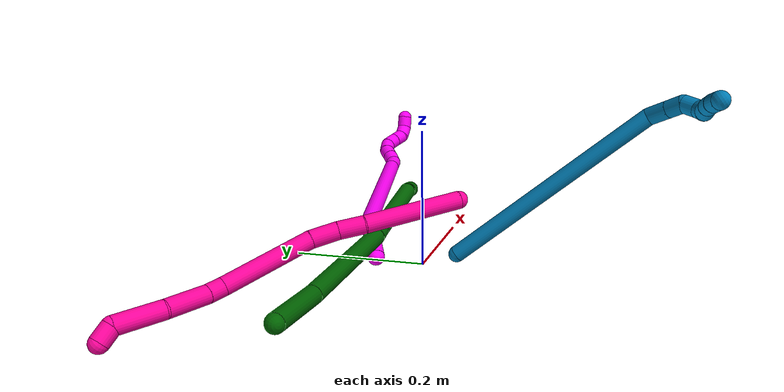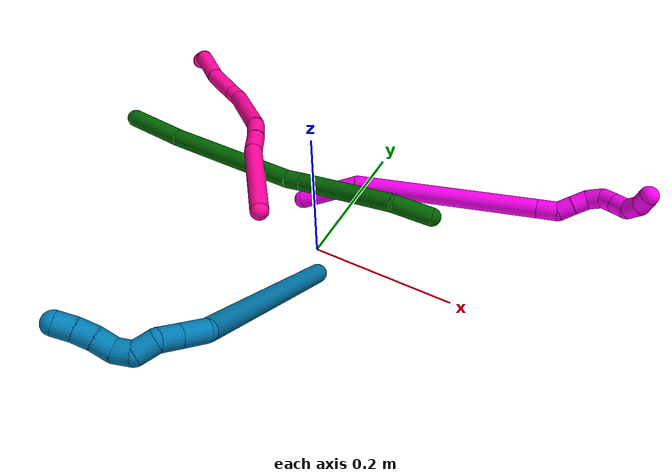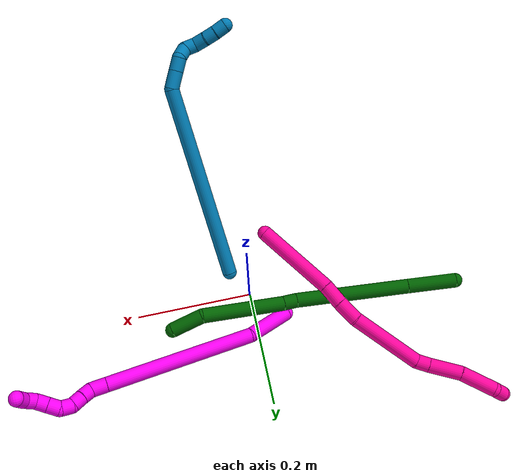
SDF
<sdf version="1.7">
 <world name="default">
  <model name="photoneo_s_sensor">
   <static>1</static>
   <pose>0 0 2 1.57079 1.57079 3.14159</pose>
   <link name="link">
    <inertial><mass>0.1</mass></inertial>
    <sensor name="sensor" type="depth">
     <update_rate>30</update_rate>
     <camera>
      <horizontal_fov>1.22</horizontal_fov>
      <image><width>1920</width><height>1200</height><format>B8G8R8</format></image>
      <clip><near>0.1</near><far>4</far></clip>
      <depth_camera><output>points</output></depth_camera>
     </camera>
     <plugin name="camera_plugin" filename="libgazebo_ros_depth_camera.so">
      <baseline>0.2</baseline>
      <alwaysOn>1</alwaysOn>
      <updateRate>0.0</updateRate>
      <cameraName>camera_ir</cameraName>
      <imageTopicName>/camera/color/image_raw</imageTopicName>
      <cameraInfoTopicName>/camera/color/camera_info</cameraInfoTopicName>
      <depthImageTopicName>/camera/depth/image_raw</depthImageTopicName>
      <depthImageCameraInfoTopicName>/camera/depth/camera_info</depthImageCameraInfoTopicName>
      <pointCloudTopicName>/camera/depth/points</pointCloudTopicName>
      <frameName>fr_optical</frameName>
      <pointCloudCutoff>0.1</pointCloudCutoff>
      <pointCloudCutoffMax>2.0</pointCloudCutoffMax>
      <distortionK1>0</distortionK1>
      <distortionK2>0</distortionK2>
      <distortionK3>0</distortionK3>
      <distortionT1>0</distortionT1>
      <distortionT2>0</distortionT2>
      <CxPrime>0</CxPrime>
      <Cx>0</Cx>
      <Cy>0</Cy>
      <focalLength>0</focalLength>
      <hackBaseline>0</hackBaseline>
     </plugin>
    </sensor>
   </link>
  </model>
  <model name="bin">
   <static>1</static>
   <link name="bottom">
    <collision name="collision-bottom">
     <pose>0 0 -0.01 0 -0 0</pose>
     <geometry><box><size>0.8 0.6 0.02</size></box></geometry>
     <surface>
      <friction><ode><mu>100</mu><mu2>100</mu2></ode></friction>
      <contact><collide_bitmask>65535</collide_bitmask></contact>
     </surface>
    </collision>
   </link>
   <link name="west_wall">
    <collision name="collision-west_wall">
     <pose>-0.41 0 0.1 0 -0 0</pose>
     <geometry><box><size>0.02 0.6 0.2</size></box></geometry>
     <surface>
      <friction><ode><mu>100</mu><mu2>100</mu2></ode></friction>
      <contact><collide_bitmask>65535</collide_bitmask></contact>
     </surface>
    </collision>
   </link>
   <link name="east_wall">
    <collision name="collision-east_wall">
     <pose>0.41 0 0.1 0 -0 0</pose>
     <geometry><box><size>0.02 0.6 0.2</size></box></geometry>
     <surface>
      <friction><ode><mu>100</mu><mu2>100</mu2></ode></friction>
      <contact><collide_bitmask>65535</collide_bitmask></contact>
     </surface>
    </collision>
   </link>
   <link name="south_wall">
    <collision name="collision-south_wall">
     <pose>0 -0.31 0.1 0 -0 0</pose>
     <geometry><box><size>0.8 0.02 0.2</size></box></geometry>
     <surface>
      <friction><ode><mu>100</mu><mu2>100</mu2></ode></friction>
      <contact><collide_bitmask>65535</collide_bitmask></contact>
     </surface>
    </collision>
   </link>
   <link name="north_wall">
    <collision name="collision-north_wall">
     <pose>0 0.31 0.1 0 -0 0</pose>
     <geometry><box><size>0.8 0.02 0.2</size></box></geometry>
     <surface>
      <friction><ode><mu>100</mu><mu2>100</mu2></ode></friction>
      <contact><collide_bitmask>65535</collide_bitmask></contact>
     </surface>
    </collision>
   </link>
  </model>
  <model name="6">
   <static>0</static>
   <link name="6">
    <collision name="collision-cylinder-e_1_1_4">
     <pose>-0.012209 -0.008151 -0.022887 2.79945 -0.465676 -1.88238</pose>
     <geometry><cylinder><radius>0.0125</radius><length>0.054382</length></cylinder></geometry>
     <surface>
      <friction><ode><mu>1.16</mu><mu2>1.16</mu2><slip1>0</slip1><slip2>0</slip2></ode></friction>
      <contact><ode><kp>1e+06</kp><kd>1</kd><max_vel>0</max_vel><min_depth>0.001</min_depth></ode></contact>
     </surface>
    </collision>
    <visual name="visual-cylinder-e_1_1_4">
     <pose>-0.012209 -0.008151 -0.022887 2.79945 -0.465676 -1.88238</pose>
     <geometry><cylinder><radius>0.0125</radius><length>0.054382</length></cylinder></geometry>
     <material><ambient>0 0.392157 0.003922 1</ambient></material>
    </visual>
    <collision name="collision-cylinder-e_2_4_5">
     <pose>-0.074981 -0.019077 -0.09482 3.08508 -0.799822 -3.00806</pose>
     <geometry><cylinder><radius>0.0125</radius><length>0.140992</length></cylinder></geometry>
     <surface>
      <friction><ode><mu>1.16</mu><mu2>1.16</mu2><slip1>0</slip1><slip2>0</slip2></ode></friction>
      <contact><ode><kp>1e+06</kp><kd>1</kd><max_vel>0</max_vel><min_depth>0.001</min_depth></ode></contact>
     </surface>
    </collision>
    <visual name="visual-cylinder-e_2_4_5">
     <pose>-0.074981 -0.019077 -0.09482 3.08508 -0.799822 -3.00806</pose>
     <geometry><cylinder><radius>0.0125</radius><length>0.140992</length></cylinder></geometry>
     <material><ambient>0 0.392157 0.003922 1</ambient></material>
    </visual>
    <collision name="collision-cylinder-e_3_5_6">
     <pose>-0.133247 -0.022379 -0.152462 3.08029 -0.729797 -2.98141</pose>
     <geometry><cylinder><radius>0.0125</radius><length>0.023111</length></cylinder></geometry>
     <surface>
      <friction><ode><mu>1.16</mu><mu2>1.16</mu2><slip1>0</slip1><slip2>0</slip2></ode></friction>
      <contact><ode><kp>1e+06</kp><kd>1</kd><max_vel>0</max_vel><min_depth>0.001</min_depth></ode></contact>
     </surface>
    </collision>
    <visual name="visual-cylinder-e_3_5_6">
     <pose>-0.133247 -0.022379 -0.152462 3.08029 -0.729797 -2.98141</pose>
     <geometry><cylinder><radius>0.0125</radius><length>0.023111</length></cylinder></geometry>
     <material><ambient>0 0.392157 0.003922 1</ambient></material>
    </visual>
    <collision name="collision-cylinder-e_4_6_7">
     <pose>-0.212369 -0.038189 -0.227083 2.91414 -0.811599 -2.62192</pose>
     <geometry><cylinder><radius>0.0125</radius><length>0.196908</length></cylinder></geometry>
     <surface>
      <friction><ode><mu>1.16</mu><mu2>1.16</mu2><slip1>0</slip1><slip2>0</slip2></ode></friction>
      <contact><ode><kp>1e+06</kp><kd>1</kd><max_vel>0</max_vel><min_depth>0.001</min_depth></ode></contact>
     </surface>
    </collision>
    <visual name="visual-cylinder-e_4_6_7">
     <pose>-0.212369 -0.038189 -0.227083 2.91414 -0.811599 -2.62192</pose>
     <geometry><cylinder><radius>0.0125</radius><length>0.196908</length></cylinder></geometry>
     <material><ambient>0 0.392157 0.003922 1</ambient></material>
    </visual>
    <collision name="collision-cylinder-e_5_7_2">
     <pose>-0.314202 -0.062733 -0.321012 2.82111 -0.802347 -2.41348</pose>
     <geometry><cylinder><radius>0.0125</radius><length>0.084607</length></cylinder></geometry>
     <surface>
      <friction><ode><mu>1.16</mu><mu2>1.16</mu2><slip1>0</slip1><slip2>0</slip2></ode></friction>
      <contact><ode><kp>1e+06</kp><kd>1</kd><max_vel>0</max_vel><min_depth>0.001</min_depth></ode></contact>
     </surface>
    </collision>
    <visual name="visual-cylinder-e_5_7_2">
     <pose>-0.314202 -0.062733 -0.321012 2.82111 -0.802347 -2.41348</pose>
     <geometry><cylinder><radius>0.0125</radius><length>0.084607</length></cylinder></geometry>
     <material><ambient>0 0.392157 0.003922 1</ambient></material>
    </visual>
    <collision name="collision-sphere-2">
     <pose>-0.344618 -0.071996 -0.348917 0 -0 0</pose>
     <geometry><sphere><radius>0.0125</radius></sphere></geometry>
     <surface>
      <friction><ode><mu>1.16</mu><mu2>1.16</mu2><slip1>0</slip1><slip2>0</slip2></ode></friction>
      <contact><ode><kp>1e+06</kp><kd>1</kd><max_vel>0</max_vel><min_depth>0.001</min_depth></ode></contact>
     </surface>
    </collision>
    <visual name="visual-sphere-2">
     <pose>-0.344618 -0.071996 -0.348917 0 -0 0</pose>
     <geometry><sphere><radius>0.0125</radius></sphere></geometry>
     <material><ambient>0 0.392157 0.003922 1</ambient></material>
    </visual>
    <collision name="collision-sphere-7">
     <pose>-0.283786 -0.053471 -0.293107 0 -0 0</pose>
     <geometry><sphere><radius>0.0125</radius></sphere></geometry>
     <surface>
      <friction><ode><mu>1.16</mu><mu2>1.16</mu2><slip1>0</slip1><slip2>0</slip2></ode></friction>
      <contact><ode><kp>1e+06</kp><kd>1</kd><max_vel>0</max_vel><min_depth>0.001</min_depth></ode></contact>
     </surface>
    </collision>
    <visual name="visual-sphere-7">
     <pose>-0.283786 -0.053471 -0.293107 0 -0 0</pose>
     <geometry><sphere><radius>0.0125</radius></sphere></geometry>
     <material><ambient>0 0.392157 0.003922 1</ambient></material>
    </visual>
    <collision name="collision-sphere-6">
     <pose>-0.140952 -0.022907 -0.161059 0 -0 0</pose>
     <geometry><sphere><radius>0.0125</radius></sphere></geometry>
     <surface>
      <friction><ode><mu>1.16</mu><mu2>1.16</mu2><slip1>0</slip1><slip2>0</slip2></ode></friction>
      <contact><ode><kp>1e+06</kp><kd>1</kd><max_vel>0</max_vel><min_depth>0.001</min_depth></ode></contact>
     </surface>
    </collision>
    <visual name="visual-sphere-6">
     <pose>-0.140952 -0.022907 -0.161059 0 -0 0</pose>
     <geometry><sphere><radius>0.0125</radius></sphere></geometry>
     <material><ambient>0 0.392157 0.003922 1</ambient></material>
    </visual>
    <collision name="collision-sphere-5">
     <pose>-0.125543 -0.021851 -0.143866 0 -0 0</pose>
     <geometry><sphere><radius>0.0125</radius></sphere></geometry>
     <surface>
      <friction><ode><mu>1.16</mu><mu2>1.16</mu2><slip1>0</slip1><slip2>0</slip2></ode></friction>
      <contact><ode><kp>1e+06</kp><kd>1</kd><max_vel>0</max_vel><min_depth>0.001</min_depth></ode></contact>
     </surface>
    </collision>
    <visual name="visual-sphere-5">
     <pose>-0.125543 -0.021851 -0.143866 0 -0 0</pose>
     <geometry><sphere><radius>0.0125</radius></sphere></geometry>
     <material><ambient>0 0.392157 0.003922 1</ambient></material>
    </visual>
    <collision name="collision-sphere-1">
     <geometry><sphere><radius>0.0125</radius></sphere></geometry>
     <surface>
      <friction><ode><mu>1.16</mu><mu2>1.16</mu2><slip1>0</slip1><slip2>0</slip2></ode></friction>
      <contact><ode><kp>1e+06</kp><kd>1</kd><max_vel>0</max_vel><min_depth>0.001</min_depth></ode></contact>
     </surface>
    </collision>
    <visual name="visual-sphere-1">
     <geometry><sphere><radius>0.0125</radius></sphere></geometry>
     <material><ambient>0 0.392157 0.003922 1</ambient></material>
    </visual>
    <collision name="collision-sphere-4">
     <pose>-0.024419 -0.016302 -0.045775 0 -0 0</pose>
     <geometry><sphere><radius>0.0125</radius></sphere></geometry>
     <surface>
      <friction><ode><mu>1.16</mu><mu2>1.16</mu2><slip1>0</slip1><slip2>0</slip2></ode></friction>
      <contact><ode><kp>1e+06</kp><kd>1</kd><max_vel>0</max_vel><min_depth>0.001</min_depth></ode></contact>
     </surface>
    </collision>
    <visual name="visual-sphere-4">
     <pose>-0.024419 -0.016302 -0.045775 0 -0 0</pose>
     <geometry><sphere><radius>0.0125</radius></sphere></geometry>
     <material><ambient>0 0.392157 0.003922 1</ambient></material>
    </visual>
    <inertial>
     <pose>-0.165432 -0.032955 -0.180023 0 -0 0</pose>
     <mass>0.5</mass>
     <inertia>
      <ixx>-0.000891</ixx>
      <ixy>0</ixy>
      <ixz>0</ixz>
      <iyy>0.000603</iyy>
      <iyz>0</iyz>
      <izz>0.000784</izz>
     </inertia>
    </inertial>
   </link>
   <pose>0.141663 0.060041 0.07854 -1.67125 -0.388554 -0.770493</pose>
  </model>
  <model name="9">
   <static>0</static>
   <link name="9">
    <collision name="collision-cylinder-e_1_1_4">
     <pose>0.006307 0.010333 0.170066 -0.060685 0.037 -0.001123</pose>
     <geometry><cylinder><radius>0.0125</radius><length>0.340992</length></cylinder></geometry>
     <surface>
      <friction><ode><mu>1.16</mu><mu2>1.16</mu2><slip1>0</slip1><slip2>0</slip2></ode></friction>
      <contact><ode><kp>1e+06</kp><kd>1</kd><max_vel>0</max_vel><min_depth>0.001</min_depth></ode></contact>
     </surface>
    </collision>
    <visual name="visual-cylinder-e_1_1_4">
     <pose>0.006307 0.010333 0.170066 -0.060685 0.037 -0.001123</pose>
     <geometry><cylinder><radius>0.0125</radius><length>0.340992</length></cylinder></geometry>
     <material><ambient>0 0.490196 0.709804 1</ambient></material>
    </visual>
    <collision name="collision-cylinder-e_2_4_5">
     <pose>0.007169 0.015443 0.353506 0.372306 -0.362435 -0.068989</pose>
     <geometry><cylinder><radius>0.0125</radius><length>0.030711</length></cylinder></geometry>
     <surface>
      <friction><ode><mu>1.16</mu><mu2>1.16</mu2><slip1>0</slip1><slip2>0</slip2></ode></friction>
      <contact><ode><kp>1e+06</kp><kd>1</kd><max_vel>0</max_vel><min_depth>0.001</min_depth></ode></contact>
     </surface>
    </collision>
    <visual name="visual-cylinder-e_2_4_5">
     <pose>0.007169 0.015443 0.353506 0.372306 -0.362435 -0.068989</pose>
     <geometry><cylinder><radius>0.0125</radius><length>0.030711</length></cylinder></geometry>
     <material><ambient>0 0.490196 0.709804 1</ambient></material>
    </visual>
    <collision name="collision-cylinder-e_3_5_6">
     <pose>-0.002467 0.006278 0.376991 0.371774 -0.368578 -0.070081</pose>
     <geometry><cylinder><radius>0.0125</radius><length>0.023268</length></cylinder></geometry>
     <surface>
      <friction><ode><mu>1.16</mu><mu2>1.16</mu2><slip1>0</slip1><slip2>0</slip2></ode></friction>
      <contact><ode><kp>1e+06</kp><kd>1</kd><max_vel>0</max_vel><min_depth>0.001</min_depth></ode></contact>
     </surface>
    </collision>
    <visual name="visual-cylinder-e_3_5_6">
     <pose>-0.002467 0.006278 0.376991 0.371774 -0.368578 -0.070081</pose>
     <geometry><cylinder><radius>0.0125</radius><length>0.023268</length></cylinder></geometry>
     <material><ambient>0 0.490196 0.709804 1</ambient></material>
    </visual>
    <collision name="collision-cylinder-e_4_6_7">
     <pose>-0.008895 -0.007404 0.393041 1.02326 -0.193647 -0.108966</pose>
     <geometry><cylinder><radius>0.0125</radius><length>0.023248</length></cylinder></geometry>
     <surface>
      <friction><ode><mu>1.16</mu><mu2>1.16</mu2><slip1>0</slip1><slip2>0</slip2></ode></friction>
      <contact><ode><kp>1e+06</kp><kd>1</kd><max_vel>0</max_vel><min_depth>0.001</min_depth></ode></contact>
     </surface>
    </collision>
    <visual name="visual-cylinder-e_4_6_7">
     <pose>-0.008895 -0.007404 0.393041 1.02326 -0.193647 -0.108966</pose>
     <geometry><cylinder><radius>0.0125</radius><length>0.023248</length></cylinder></geometry>
     <material><ambient>0 0.490196 0.709804 1</ambient></material>
    </visual>
    <collision name="collision-cylinder-e_5_7_8">
     <pose>-0.019146 -0.0231 0.400405 1.33588 -0.918186 -0.743661</pose>
     <geometry><cylinder><radius>0.0125</radius><length>0.020172</length></cylinder></geometry>
     <surface>
      <friction><ode><mu>1.16</mu><mu2>1.16</mu2><slip1>0</slip1><slip2>0</slip2></ode></friction>
      <contact><ode><kp>1e+06</kp><kd>1</kd><max_vel>0</max_vel><min_depth>0.001</min_depth></ode></contact>
     </surface>
    </collision>
    <visual name="visual-cylinder-e_5_7_8">
     <pose>-0.019146 -0.0231 0.400405 1.33588 -0.918186 -0.743661</pose>
     <geometry><cylinder><radius>0.0125</radius><length>0.020172</length></cylinder></geometry>
     <material><ambient>0 0.490196 0.709804 1</ambient></material>
    </visual>
    <collision name="collision-cylinder-e_6_8_9">
     <pose>-0.037116 -0.030438 0.404879 0.425507 -1.24655 -0.308122</pose>
     <geometry><cylinder><radius>0.0125</radius><length>0.021009</length></cylinder></geometry>
     <surface>
      <friction><ode><mu>1.16</mu><mu2>1.16</mu2><slip1>0</slip1><slip2>0</slip2></ode></friction>
      <contact><ode><kp>1e+06</kp><kd>1</kd><max_vel>0</max_vel><min_depth>0.001</min_depth></ode></contact>
     </surface>
    </collision>
    <visual name="visual-cylinder-e_6_8_9">
     <pose>-0.037116 -0.030438 0.404879 0.425507 -1.24655 -0.308122</pose>
     <geometry><cylinder><radius>0.0125</radius><length>0.021009</length></cylinder></geometry>
     <material><ambient>0 0.490196 0.709804 1</ambient></material>
    </visual>
    <collision name="collision-cylinder-e_7_9_10">
     <pose>-0.056167 -0.034509 0.411126 0.699213 -1.13993 -0.459099</pose>
     <geometry><cylinder><radius>0.0125</radius><length>0.020015</length></cylinder></geometry>
     <surface>
      <friction><ode><mu>1.16</mu><mu2>1.16</mu2><slip1>0</slip1><slip2>0</slip2></ode></friction>
      <contact><ode><kp>1e+06</kp><kd>1</kd><max_vel>0</max_vel><min_depth>0.001</min_depth></ode></contact>
     </surface>
    </collision>
    <visual name="visual-cylinder-e_7_9_10">
     <pose>-0.056167 -0.034509 0.411126 0.699213 -1.13993 -0.459099</pose>
     <geometry><cylinder><radius>0.0125</radius><length>0.020015</length></cylinder></geometry>
     <material><ambient>0 0.490196 0.709804 1</ambient></material>
    </visual>
    <collision name="collision-cylinder-e_8_10_2">
     <pose>-0.074049 -0.040845 0.418248 0.748795 -1.0236 -0.434471</pose>
     <geometry><cylinder><radius>0.0125</radius><length>0.020584</length></cylinder></geometry>
     <surface>
      <friction><ode><mu>1.16</mu><mu2>1.16</mu2><slip1>0</slip1><slip2>0</slip2></ode></friction>
      <contact><ode><kp>1e+06</kp><kd>1</kd><max_vel>0</max_vel><min_depth>0.001</min_depth></ode></contact>
     </surface>
    </collision>
    <visual name="visual-cylinder-e_8_10_2">
     <pose>-0.074049 -0.040845 0.418248 0.748795 -1.0236 -0.434471</pose>
     <geometry><cylinder><radius>0.0125</radius><length>0.020584</length></cylinder></geometry>
     <material><ambient>0 0.490196 0.709804 1</ambient></material>
    </visual>
    <collision name="collision-sphere-2">
     <pose>-0.082838 -0.04449 0.42217 0 -0 0</pose>
     <geometry><sphere><radius>0.0125</radius></sphere></geometry>
     <surface>
      <friction><ode><mu>1.16</mu><mu2>1.16</mu2><slip1>0</slip1><slip2>0</slip2></ode></friction>
      <contact><ode><kp>1e+06</kp><kd>1</kd><max_vel>0</max_vel><min_depth>0.001</min_depth></ode></contact>
     </surface>
    </collision>
    <visual name="visual-sphere-2">
     <pose>-0.082838 -0.04449 0.42217 0 -0 0</pose>
     <geometry><sphere><radius>0.0125</radius></sphere></geometry>
     <material><ambient>0 0.490196 0.709804 1</ambient></material>
    </visual>
    <collision name="collision-sphere-10">
     <pose>-0.065259 -0.037199 0.414325 0 -0 0</pose>
     <geometry><sphere><radius>0.0125</radius></sphere></geometry>
     <surface>
      <friction><ode><mu>1.16</mu><mu2>1.16</mu2><slip1>0</slip1><slip2>0</slip2></ode></friction>
      <contact><ode><kp>1e+06</kp><kd>1</kd><max_vel>0</max_vel><min_depth>0.001</min_depth></ode></contact>
     </surface>
    </collision>
    <visual name="visual-sphere-10">
     <pose>-0.065259 -0.037199 0.414325 0 -0 0</pose>
     <geometry><sphere><radius>0.0125</radius></sphere></geometry>
     <material><ambient>0 0.490196 0.709804 1</ambient></material>
    </visual>
    <collision name="collision-sphere-9">
     <pose>-0.047074 -0.031819 0.407927 0 -0 0</pose>
     <geometry><sphere><radius>0.0125</radius></sphere></geometry>
     <surface>
      <friction><ode><mu>1.16</mu><mu2>1.16</mu2><slip1>0</slip1><slip2>0</slip2></ode></friction>
      <contact><ode><kp>1e+06</kp><kd>1</kd><max_vel>0</max_vel><min_depth>0.001</min_depth></ode></contact>
     </surface>
    </collision>
    <visual name="visual-sphere-9">
     <pose>-0.047074 -0.031819 0.407927 0 -0 0</pose>
     <geometry><sphere><radius>0.0125</radius></sphere></geometry>
     <material><ambient>0 0.490196 0.709804 1</ambient></material>
    </visual>
    <collision name="collision-sphere-4">
     <pose>0.012614 0.020666 0.340132 0 -0 0</pose>
     <geometry><sphere><radius>0.0125</radius></sphere></geometry>
     <surface>
      <friction><ode><mu>1.16</mu><mu2>1.16</mu2><slip1>0</slip1><slip2>0</slip2></ode></friction>
      <contact><ode><kp>1e+06</kp><kd>1</kd><max_vel>0</max_vel><min_depth>0.001</min_depth></ode></contact>
     </surface>
    </collision>
    <visual name="visual-sphere-4">
     <pose>0.012614 0.020666 0.340132 0 -0 0</pose>
     <geometry><sphere><radius>0.0125</radius></sphere></geometry>
     <material><ambient>0 0.490196 0.709804 1</ambient></material>
    </visual>
    <collision name="collision-sphere-1">
     <geometry><sphere><radius>0.0125</radius></sphere></geometry>
     <surface>
      <friction><ode><mu>1.16</mu><mu2>1.16</mu2><slip1>0</slip1><slip2>0</slip2></ode></friction>
      <contact><ode><kp>1e+06</kp><kd>1</kd><max_vel>0</max_vel><min_depth>0.001</min_depth></ode></contact>
     </surface>
    </collision>
    <visual name="visual-sphere-1">
     <geometry><sphere><radius>0.0125</radius></sphere></geometry>
     <material><ambient>0 0.490196 0.709804 1</ambient></material>
    </visual>
    <collision name="collision-sphere-8">
     <pose>-0.027159 -0.029056 0.401831 0 -0 0</pose>
     <geometry><sphere><radius>0.0125</radius></sphere></geometry>
     <surface>
      <friction><ode><mu>1.16</mu><mu2>1.16</mu2><slip1>0</slip1><slip2>0</slip2></ode></friction>
      <contact><ode><kp>1e+06</kp><kd>1</kd><max_vel>0</max_vel><min_depth>0.001</min_depth></ode></contact>
     </surface>
    </collision>
    <visual name="visual-sphere-8">
     <pose>-0.027159 -0.029056 0.401831 0 -0 0</pose>
     <geometry><sphere><radius>0.0125</radius></sphere></geometry>
     <material><ambient>0 0.490196 0.709804 1</ambient></material>
    </visual>
    <collision name="collision-sphere-5">
     <pose>0.001725 0.01022 0.36688 0 -0 0</pose>
     <geometry><sphere><radius>0.0125</radius></sphere></geometry>
     <surface>
      <friction><ode><mu>1.16</mu><mu2>1.16</mu2><slip1>0</slip1><slip2>0</slip2></ode></friction>
      <contact><ode><kp>1e+06</kp><kd>1</kd><max_vel>0</max_vel><min_depth>0.001</min_depth></ode></contact>
     </surface>
    </collision>
    <visual name="visual-sphere-5">
     <pose>0.001725 0.01022 0.36688 0 -0 0</pose>
     <geometry><sphere><radius>0.0125</radius></sphere></geometry>
     <material><ambient>0 0.490196 0.709804 1</ambient></material>
    </visual>
    <collision name="collision-sphere-6">
     <pose>-0.006658 0.002335 0.387103 0 -0 0</pose>
     <geometry><sphere><radius>0.0125</radius></sphere></geometry>
     <surface>
      <friction><ode><mu>1.16</mu><mu2>1.16</mu2><slip1>0</slip1><slip2>0</slip2></ode></friction>
      <contact><ode><kp>1e+06</kp><kd>1</kd><max_vel>0</max_vel><min_depth>0.001</min_depth></ode></contact>
     </surface>
    </collision>
    <visual name="visual-sphere-6">
     <pose>-0.006658 0.002335 0.387103 0 -0 0</pose>
     <geometry><sphere><radius>0.0125</radius></sphere></geometry>
     <material><ambient>0 0.490196 0.709804 1</ambient></material>
    </visual>
    <collision name="collision-sphere-7">
     <pose>-0.011132 -0.017143 0.398979 0 -0 0</pose>
     <geometry><sphere><radius>0.0125</radius></sphere></geometry>
     <surface>
      <friction><ode><mu>1.16</mu><mu2>1.16</mu2><slip1>0</slip1><slip2>0</slip2></ode></friction>
      <contact><ode><kp>1e+06</kp><kd>1</kd><max_vel>0</max_vel><min_depth>0.001</min_depth></ode></contact>
     </surface>
    </collision>
    <visual name="visual-sphere-7">
     <pose>-0.011132 -0.017143 0.398979 0 -0 0</pose>
     <geometry><sphere><radius>0.0125</radius></sphere></geometry>
     <material><ambient>0 0.490196 0.709804 1</ambient></material>
    </visual>
    <inertial>
     <pose>-0.003416 0.00267 0.240356 0 -0 0</pose>
     <mass>0.5</mass>
     <inertia>
      <ixx>0.003313</ixx>
      <ixy>0</ixy>
      <ixz>0</ixz>
      <iyy>0.003314</iyy>
      <iyz>0</iyz>
      <izz>-0.000278</izz>
     </inertia>
    </inertial>
   </link>
   <pose>0.027089 -0.04584 0.011497 0.873095 0.3855 -0.241676</pose>
  </model>
  <model name="10">
   <static>0</static>
   <link name="10">
    <collision name="collision-cylinder-e_1_1_4">
     <pose>0.016104 0.005822 0.037393 -0.154451 0.402327 -0.031556</pose>
     <geometry><cylinder><radius>0.0125</radius><length>0.082255</length></cylinder></geometry>
     <surface>
      <friction><ode><mu>1.16</mu><mu2>1.16</mu2><slip1>0</slip1><slip2>0</slip2></ode></friction>
      <contact><ode><kp>1e+06</kp><kd>1</kd><max_vel>0</max_vel><min_depth>0.001</min_depth></ode></contact>
     </surface>
    </collision>
    <visual name="visual-cylinder-e_1_1_4">
     <pose>0.016104 0.005822 0.037393 -0.154451 0.402327 -0.031556</pose>
     <geometry><cylinder><radius>0.0125</radius><length>0.082255</length></cylinder></geometry>
     <material><ambient>1 0 0.964706 1</ambient></material>
    </visual>
    <collision name="collision-cylinder-e_2_4_5">
     <pose>0.040211 0.00866 0.199946 0.023835 0.06384 0.000761</pose>
     <geometry><cylinder><radius>0.0125</radius><length>0.250901</length></cylinder></geometry>
     <surface>
      <friction><ode><mu>1.16</mu><mu2>1.16</mu2><slip1>0</slip1><slip2>0</slip2></ode></friction>
      <contact><ode><kp>1e+06</kp><kd>1</kd><max_vel>0</max_vel><min_depth>0.001</min_depth></ode></contact>
     </surface>
    </collision>
    <visual name="visual-cylinder-e_2_4_5">
     <pose>0.040211 0.00866 0.199946 0.023835 0.06384 0.000761</pose>
     <geometry><cylinder><radius>0.0125</radius><length>0.250901</length></cylinder></geometry>
     <material><ambient>1 0 0.964706 1</ambient></material>
    </visual>
    <collision name="collision-cylinder-e_3_5_6">
     <pose>0.049016 0.005239 0.338457 0.032694 0.059971 0.000981</pose>
     <geometry><cylinder><radius>0.0125</radius><length>0.026767</length></cylinder></geometry>
     <surface>
      <friction><ode><mu>1.16</mu><mu2>1.16</mu2><slip1>0</slip1><slip2>0</slip2></ode></friction>
      <contact><ode><kp>1e+06</kp><kd>1</kd><max_vel>0</max_vel><min_depth>0.001</min_depth></ode></contact>
     </surface>
    </collision>
    <visual name="visual-cylinder-e_3_5_6">
     <pose>0.049016 0.005239 0.338457 0.032694 0.059971 0.000981</pose>
     <geometry><cylinder><radius>0.0125</radius><length>0.026767</length></cylinder></geometry>
     <material><ambient>1 0 0.964706 1</ambient></material>
    </visual>
    <collision name="collision-cylinder-e_4_6_7">
     <pose>0.055182 0.006451 0.360095 -0.196431 0.565645 -0.057254</pose>
     <geometry><cylinder><radius>0.0125</radius><length>0.020013</length></cylinder></geometry>
     <surface>
      <friction><ode><mu>1.16</mu><mu2>1.16</mu2><slip1>0</slip1><slip2>0</slip2></ode></friction>
      <contact><ode><kp>1e+06</kp><kd>1</kd><max_vel>0</max_vel><min_depth>0.001</min_depth></ode></contact>
     </surface>
    </collision>
    <visual name="visual-cylinder-e_4_6_7">
     <pose>0.055182 0.006451 0.360095 -0.196431 0.565645 -0.057254</pose>
     <geometry><cylinder><radius>0.0125</radius><length>0.020013</length></cylinder></geometry>
     <material><ambient>1 0 0.964706 1</ambient></material>
    </visual>
    <collision name="collision-cylinder-e_5_7_8">
     <pose>0.066103 0.00908 0.376661 -0.117758 0.587995 -0.035691</pose>
     <geometry><cylinder><radius>0.0125</radius><length>0.020042</length></cylinder></geometry>
     <surface>
      <friction><ode><mu>1.16</mu><mu2>1.16</mu2><slip1>0</slip1><slip2>0</slip2></ode></friction>
      <contact><ode><kp>1e+06</kp><kd>1</kd><max_vel>0</max_vel><min_depth>0.001</min_depth></ode></contact>
     </surface>
    </collision>
    <visual name="visual-cylinder-e_5_7_8">
     <pose>0.066103 0.00908 0.376661 -0.117758 0.587995 -0.035691</pose>
     <geometry><cylinder><radius>0.0125</radius><length>0.020042</length></cylinder></geometry>
     <material><ambient>1 0 0.964706 1</ambient></material>
    </visual>
    <collision name="collision-cylinder-e_6_8_9">
     <pose>0.073157 0.012728 0.394468 -0.273141 0.149933 -0.020643</pose>
     <geometry><cylinder><radius>0.0125</radius><length>0.020011</length></cylinder></geometry>
     <surface>
      <friction><ode><mu>1.16</mu><mu2>1.16</mu2><slip1>0</slip1><slip2>0</slip2></ode></friction>
      <contact><ode><kp>1e+06</kp><kd>1</kd><max_vel>0</max_vel><min_depth>0.001</min_depth></ode></contact>
     </surface>
    </collision>
    <visual name="visual-cylinder-e_6_8_9">
     <pose>0.073157 0.012728 0.394468 -0.273141 0.149933 -0.020643</pose>
     <geometry><cylinder><radius>0.0125</radius><length>0.020011</length></cylinder></geometry>
     <material><ambient>1 0 0.964706 1</ambient></material>
    </visual>
    <collision name="collision-cylinder-e_7_9_10">
     <pose>0.070347 0.018691 0.412402 -0.373371 -0.444852 0.085388</pose>
     <geometry><cylinder><radius>0.0125</radius><length>0.020006</length></cylinder></geometry>
     <surface>
      <friction><ode><mu>1.16</mu><mu2>1.16</mu2><slip1>0</slip1><slip2>0</slip2></ode></friction>
      <contact><ode><kp>1e+06</kp><kd>1</kd><max_vel>0</max_vel><min_depth>0.001</min_depth></ode></contact>
     </surface>
    </collision>
    <visual name="visual-cylinder-e_7_9_10">
     <pose>0.070347 0.018691 0.412402 -0.373371 -0.444852 0.085388</pose>
     <geometry><cylinder><radius>0.0125</radius><length>0.020006</length></cylinder></geometry>
     <material><ambient>1 0 0.964706 1</ambient></material>
    </visual>
    <collision name="collision-cylinder-e_8_10_11">
     <pose>0.061569 0.025029 0.429218 -0.347425 -0.463809 0.082833</pose>
     <geometry><cylinder><radius>0.0125</radius><length>0.02</length></cylinder></geometry>
     <surface>
      <friction><ode><mu>1.16</mu><mu2>1.16</mu2><slip1>0</slip1><slip2>0</slip2></ode></friction>
      <contact><ode><kp>1e+06</kp><kd>1</kd><max_vel>0</max_vel><min_depth>0.001</min_depth></ode></contact>
     </surface>
    </collision>
    <visual name="visual-cylinder-e_8_10_11">
     <pose>0.061569 0.025029 0.429218 -0.347425 -0.463809 0.082833</pose>
     <geometry><cylinder><radius>0.0125</radius><length>0.02</length></cylinder></geometry>
     <material><ambient>1 0 0.964706 1</ambient></material>
    </visual>
    <collision name="collision-cylinder-e_9_11_12">
     <pose>0.05761 0.034173 0.445536 -0.656946 0.051489 -0.017552</pose>
     <geometry><cylinder><radius>0.0125</radius><length>0.020001</length></cylinder></geometry>
     <surface>
      <friction><ode><mu>1.16</mu><mu2>1.16</mu2><slip1>0</slip1><slip2>0</slip2></ode></friction>
      <contact><ode><kp>1e+06</kp><kd>1</kd><max_vel>0</max_vel><min_depth>0.001</min_depth></ode></contact>
     </surface>
    </collision>
    <visual name="visual-cylinder-e_9_11_12">
     <pose>0.05761 0.034173 0.445536 -0.656946 0.051489 -0.017552</pose>
     <geometry><cylinder><radius>0.0125</radius><length>0.020001</length></cylinder></geometry>
     <material><ambient>1 0 0.964706 1</ambient></material>
    </visual>
    <collision name="collision-cylinder-e_10_12_2">
     <pose>0.06055 0.048922 0.457843 -1.10031 0.244979 -0.150719</pose>
     <geometry><cylinder><radius>0.0125</radius><length>0.020004</length></cylinder></geometry>
     <surface>
      <friction><ode><mu>1.16</mu><mu2>1.16</mu2><slip1>0</slip1><slip2>0</slip2></ode></friction>
      <contact><ode><kp>1e+06</kp><kd>1</kd><max_vel>0</max_vel><min_depth>0.001</min_depth></ode></contact>
     </surface>
    </collision>
    <visual name="visual-cylinder-e_10_12_2">
     <pose>0.06055 0.048922 0.457843 -1.10031 0.244979 -0.150719</pose>
     <geometry><cylinder><radius>0.0125</radius><length>0.020004</length></cylinder></geometry>
     <material><ambient>1 0 0.964706 1</ambient></material>
    </visual>
    <collision name="collision-sphere-2">
     <pose>0.062976 0.05757 0.462242 0 -0 0</pose>
     <geometry><sphere><radius>0.0125</radius></sphere></geometry>
     <surface>
      <friction><ode><mu>1.16</mu><mu2>1.16</mu2><slip1>0</slip1><slip2>0</slip2></ode></friction>
      <contact><ode><kp>1e+06</kp><kd>1</kd><max_vel>0</max_vel><min_depth>0.001</min_depth></ode></contact>
     </surface>
    </collision>
    <visual name="visual-sphere-2">
     <pose>0.062976 0.05757 0.462242 0 -0 0</pose>
     <geometry><sphere><radius>0.0125</radius></sphere></geometry>
     <material><ambient>1 0 0.964706 1</ambient></material>
    </visual>
    <collision name="collision-sphere-12">
     <pose>0.058124 0.040273 0.453444 0 -0 0</pose>
     <geometry><sphere><radius>0.0125</radius></sphere></geometry>
     <surface>
      <friction><ode><mu>1.16</mu><mu2>1.16</mu2><slip1>0</slip1><slip2>0</slip2></ode></friction>
      <contact><ode><kp>1e+06</kp><kd>1</kd><max_vel>0</max_vel><min_depth>0.001</min_depth></ode></contact>
     </surface>
    </collision>
    <visual name="visual-sphere-12">
     <pose>0.058124 0.040273 0.453444 0 -0 0</pose>
     <geometry><sphere><radius>0.0125</radius></sphere></geometry>
     <material><ambient>1 0 0.964706 1</ambient></material>
    </visual>
    <collision name="collision-sphere-11">
     <pose>0.057095 0.028074 0.437627 0 -0 0</pose>
     <geometry><sphere><radius>0.0125</radius></sphere></geometry>
     <surface>
      <friction><ode><mu>1.16</mu><mu2>1.16</mu2><slip1>0</slip1><slip2>0</slip2></ode></friction>
      <contact><ode><kp>1e+06</kp><kd>1</kd><max_vel>0</max_vel><min_depth>0.001</min_depth></ode></contact>
     </surface>
    </collision>
    <visual name="visual-sphere-11">
     <pose>0.057095 0.028074 0.437627 0 -0 0</pose>
     <geometry><sphere><radius>0.0125</radius></sphere></geometry>
     <material><ambient>1 0 0.964706 1</ambient></material>
    </visual>
    <collision name="collision-sphere-10">
     <pose>0.066042 0.021984 0.420809 0 -0 0</pose>
     <geometry><sphere><radius>0.0125</radius></sphere></geometry>
     <surface>
      <friction><ode><mu>1.16</mu><mu2>1.16</mu2><slip1>0</slip1><slip2>0</slip2></ode></friction>
      <contact><ode><kp>1e+06</kp><kd>1</kd><max_vel>0</max_vel><min_depth>0.001</min_depth></ode></contact>
     </surface>
    </collision>
    <visual name="visual-sphere-10">
     <pose>0.066042 0.021984 0.420809 0 -0 0</pose>
     <geometry><sphere><radius>0.0125</radius></sphere></geometry>
     <material><ambient>1 0 0.964706 1</ambient></material>
    </visual>
    <collision name="collision-sphere-9">
     <pose>0.074651 0.015397 0.403995 0 -0 0</pose>
     <geometry><sphere><radius>0.0125</radius></sphere></geometry>
     <surface>
      <friction><ode><mu>1.16</mu><mu2>1.16</mu2><slip1>0</slip1><slip2>0</slip2></ode></friction>
      <contact><ode><kp>1e+06</kp><kd>1</kd><max_vel>0</max_vel><min_depth>0.001</min_depth></ode></contact>
     </surface>
    </collision>
    <visual name="visual-sphere-9">
     <pose>0.074651 0.015397 0.403995 0 -0 0</pose>
     <geometry><sphere><radius>0.0125</radius></sphere></geometry>
     <material><ambient>1 0 0.964706 1</ambient></material>
    </visual>
    <collision name="collision-sphere-4">
     <pose>0.032208 0.011644 0.074786 0 -0 0</pose>
     <geometry><sphere><radius>0.0125</radius></sphere></geometry>
     <surface>
      <friction><ode><mu>1.16</mu><mu2>1.16</mu2><slip1>0</slip1><slip2>0</slip2></ode></friction>
      <contact><ode><kp>1e+06</kp><kd>1</kd><max_vel>0</max_vel><min_depth>0.001</min_depth></ode></contact>
     </surface>
    </collision>
    <visual name="visual-sphere-4">
     <pose>0.032208 0.011644 0.074786 0 -0 0</pose>
     <geometry><sphere><radius>0.0125</radius></sphere></geometry>
     <material><ambient>1 0 0.964706 1</ambient></material>
    </visual>
    <collision name="collision-sphere-1">
     <geometry><sphere><radius>0.0125</radius></sphere></geometry>
     <surface>
      <friction><ode><mu>1.16</mu><mu2>1.16</mu2><slip1>0</slip1><slip2>0</slip2></ode></friction>
      <contact><ode><kp>1e+06</kp><kd>1</kd><max_vel>0</max_vel><min_depth>0.001</min_depth></ode></contact>
     </surface>
    </collision>
    <visual name="visual-sphere-1">
     <geometry><sphere><radius>0.0125</radius></sphere></geometry>
     <material><ambient>1 0 0.964706 1</ambient></material>
    </visual>
    <collision name="collision-sphere-8">
     <pose>0.071662 0.010059 0.384941 0 -0 0</pose>
     <geometry><sphere><radius>0.0125</radius></sphere></geometry>
     <surface>
      <friction><ode><mu>1.16</mu><mu2>1.16</mu2><slip1>0</slip1><slip2>0</slip2></ode></friction>
      <contact><ode><kp>1e+06</kp><kd>1</kd><max_vel>0</max_vel><min_depth>0.001</min_depth></ode></contact>
     </surface>
    </collision>
    <visual name="visual-sphere-8">
     <pose>0.071662 0.010059 0.384941 0 -0 0</pose>
     <geometry><sphere><radius>0.0125</radius></sphere></geometry>
     <material><ambient>1 0 0.964706 1</ambient></material>
    </visual>
    <collision name="collision-sphere-5">
     <pose>0.048214 0.005676 0.325105 0 -0 0</pose>
     <geometry><sphere><radius>0.0125</radius></sphere></geometry>
     <surface>
      <friction><ode><mu>1.16</mu><mu2>1.16</mu2><slip1>0</slip1><slip2>0</slip2></ode></friction>
      <contact><ode><kp>1e+06</kp><kd>1</kd><max_vel>0</max_vel><min_depth>0.001</min_depth></ode></contact>
     </surface>
    </collision>
    <visual name="visual-sphere-5">
     <pose>0.048214 0.005676 0.325105 0 -0 0</pose>
     <geometry><sphere><radius>0.0125</radius></sphere></geometry>
     <material><ambient>1 0 0.964706 1</ambient></material>
    </visual>
    <collision name="collision-sphere-6">
     <pose>0.049819 0.004803 0.35181 0 -0 0</pose>
     <geometry><sphere><radius>0.0125</radius></sphere></geometry>
     <surface>
      <friction><ode><mu>1.16</mu><mu2>1.16</mu2><slip1>0</slip1><slip2>0</slip2></ode></friction>
      <contact><ode><kp>1e+06</kp><kd>1</kd><max_vel>0</max_vel><min_depth>0.001</min_depth></ode></contact>
     </surface>
    </collision>
    <visual name="visual-sphere-6">
     <pose>0.049819 0.004803 0.35181 0 -0 0</pose>
     <geometry><sphere><radius>0.0125</radius></sphere></geometry>
     <material><ambient>1 0 0.964706 1</ambient></material>
    </visual>
    <collision name="collision-sphere-7">
     <pose>0.060545 0.0081 0.36838 0 -0 0</pose>
     <geometry><sphere><radius>0.0125</radius></sphere></geometry>
     <surface>
      <friction><ode><mu>1.16</mu><mu2>1.16</mu2><slip1>0</slip1><slip2>0</slip2></ode></friction>
      <contact><ode><kp>1e+06</kp><kd>1</kd><max_vel>0</max_vel><min_depth>0.001</min_depth></ode></contact>
     </surface>
    </collision>
    <visual name="visual-sphere-7">
     <pose>0.060545 0.0081 0.36838 0 -0 0</pose>
     <geometry><sphere><radius>0.0125</radius></sphere></geometry>
     <material><ambient>1 0 0.964706 1</ambient></material>
    </visual>
    <inertial>
     <pose>0.043242 0.011789 0.239712 0 -0 0</pose>
     <mass>0.5</mass>
     <inertia>
      <ixx>0.001385</ixx>
      <ixy>0</ixy>
      <ixz>0</ixz>
      <iyy>0.00139</iyy>
      <iyz>0</iyz>
      <izz>-4.8e-05</izz>
     </inertia>
    </inertial>
   </link>
   <pose>-0.053188 0.054839 0.024286 1.42758 -0.279436 1.7076</pose>
  </model>
  <model name="18">
   <static>0</static>
   <link name="18">
    <collision name="collision-cylinder-e_1_1_4">
     <pose>-0.038603 0.025912 0.050754 -0.472047 -0.595405 0.147317</pose>
     <geometry><cylinder><radius>0.0125</radius><length>0.137661</length></cylinder></geometry>
     <surface>
      <friction><ode><mu>1.16</mu><mu2>1.16</mu2><slip1>0</slip1><slip2>0</slip2></ode></friction>
      <contact><ode><kp>1e+06</kp><kd>1</kd><max_vel>0</max_vel><min_depth>0.001</min_depth></ode></contact>
     </surface>
    </collision>
    <visual name="visual-cylinder-e_1_1_4">
     <pose>-0.038603 0.025912 0.050754 -0.472047 -0.595405 0.147317</pose>
     <geometry><cylinder><radius>0.0125</radius><length>0.137661</length></cylinder></geometry>
     <material><ambient>1 0.007843 0.615686 1</ambient></material>
    </visual>
    <collision name="collision-cylinder-e_2_4_5">
     <pose>-0.087554 0.055983 0.115705 -0.284927 -0.610401 0.090315</pose>
     <geometry><cylinder><radius>0.0125</radius><length>0.036107</length></cylinder></geometry>
     <surface>
      <friction><ode><mu>1.16</mu><mu2>1.16</mu2><slip1>0</slip1><slip2>0</slip2></ode></friction>
      <contact><ode><kp>1e+06</kp><kd>1</kd><max_vel>0</max_vel><min_depth>0.001</min_depth></ode></contact>
     </surface>
    </collision>
    <visual name="visual-cylinder-e_2_4_5">
     <pose>-0.087554 0.055983 0.115705 -0.284927 -0.610401 0.090315</pose>
     <geometry><cylinder><radius>0.0125</radius><length>0.036107</length></cylinder></geometry>
     <material><ambient>1 0.007843 0.615686 1</ambient></material>
    </visual>
    <collision name="collision-cylinder-e_3_5_6">
     <pose>-0.107453 0.06637 0.144975 -0.391908 -0.529749 0.107582</pose>
     <geometry><cylinder><radius>0.0125</radius><length>0.037801</length></cylinder></geometry>
     <surface>
      <friction><ode><mu>1.16</mu><mu2>1.16</mu2><slip1>0</slip1><slip2>0</slip2></ode></friction>
      <contact><ode><kp>1e+06</kp><kd>1</kd><max_vel>0</max_vel><min_depth>0.001</min_depth></ode></contact>
     </surface>
    </collision>
    <visual name="visual-cylinder-e_3_5_6">
     <pose>-0.107453 0.06637 0.144975 -0.391908 -0.529749 0.107582</pose>
     <geometry><cylinder><radius>0.0125</radius><length>0.037801</length></cylinder></geometry>
     <material><ambient>1 0.007843 0.615686 1</ambient></material>
    </visual>
    <collision name="collision-cylinder-e_4_6_7">
     <pose>-0.139593 0.105499 0.208888 -0.592799 -0.366288 0.11301</pose>
     <geometry><cylinder><radius>0.0125</radius><length>0.126139</length></cylinder></geometry>
     <surface>
      <friction><ode><mu>1.16</mu><mu2>1.16</mu2><slip1>0</slip1><slip2>0</slip2></ode></friction>
      <contact><ode><kp>1e+06</kp><kd>1</kd><max_vel>0</max_vel><min_depth>0.001</min_depth></ode></contact>
     </surface>
    </collision>
    <visual name="visual-cylinder-e_4_6_7">
     <pose>-0.139593 0.105499 0.208888 -0.592799 -0.366288 0.11301</pose>
     <geometry><cylinder><radius>0.0125</radius><length>0.126139</length></cylinder></geometry>
     <material><ambient>1 0.007843 0.615686 1</ambient></material>
    </visual>
    <collision name="collision-cylinder-e_5_7_8">
     <pose>-0.16674 0.146729 0.263984 -0.926606 -0.412372 0.208222</pose>
     <geometry><cylinder><radius>0.0125</radius><length>0.022747</length></cylinder></geometry>
     <surface>
      <friction><ode><mu>1.16</mu><mu2>1.16</mu2><slip1>0</slip1><slip2>0</slip2></ode></friction>
      <contact><ode><kp>1e+06</kp><kd>1</kd><max_vel>0</max_vel><min_depth>0.001</min_depth></ode></contact>
     </surface>
    </collision>
    <visual name="visual-cylinder-e_5_7_8">
     <pose>-0.16674 0.146729 0.263984 -0.926606 -0.412372 0.208222</pose>
     <geometry><cylinder><radius>0.0125</radius><length>0.022747</length></cylinder></geometry>
     <material><ambient>1 0.007843 0.615686 1</ambient></material>
    </visual>
    <collision name="collision-cylinder-e_6_8_9">
     <pose>-0.184774 0.176185 0.283156 -1.02209 -0.498443 0.283513</pose>
     <geometry><cylinder><radius>0.0125</radius><length>0.056377</length></cylinder></geometry>
     <surface>
      <friction><ode><mu>1.16</mu><mu2>1.16</mu2><slip1>0</slip1><slip2>0</slip2></ode></friction>
      <contact><ode><kp>1e+06</kp><kd>1</kd><max_vel>0</max_vel><min_depth>0.001</min_depth></ode></contact>
     </surface>
    </collision>
    <visual name="visual-cylinder-e_6_8_9">
     <pose>-0.184774 0.176185 0.283156 -1.02209 -0.498443 0.283513</pose>
     <geometry><cylinder><radius>0.0125</radius><length>0.056377</length></cylinder></geometry>
     <material><ambient>1 0.007843 0.615686 1</ambient></material>
    </visual>
    <collision name="collision-cylinder-e_7_9_10">
     <pose>-0.214488 0.215594 0.3141 -0.792379 -0.563869 0.241151</pose>
     <geometry><cylinder><radius>0.0125</radius><length>0.060765</length></cylinder></geometry>
     <surface>
      <friction><ode><mu>1.16</mu><mu2>1.16</mu2><slip1>0</slip1><slip2>0</slip2></ode></friction>
      <contact><ode><kp>1e+06</kp><kd>1</kd><max_vel>0</max_vel><min_depth>0.001</min_depth></ode></contact>
     </surface>
    </collision>
    <visual name="visual-cylinder-e_7_9_10">
     <pose>-0.214488 0.215594 0.3141 -0.792379 -0.563869 0.241151</pose>
     <geometry><cylinder><radius>0.0125</radius><length>0.060765</length></cylinder></geometry>
     <material><ambient>1 0.007843 0.615686 1</ambient></material>
    </visual>
    <collision name="collision-cylinder-e_8_10_2">
     <pose>-0.229519 0.240747 0.340896 -0.664651 0.107969 -0.037295</pose>
     <geometry><cylinder><radius>0.0125</radius><length>0.022402</length></cylinder></geometry>
     <surface>
      <friction><ode><mu>1.16</mu><mu2>1.16</mu2><slip1>0</slip1><slip2>0</slip2></ode></friction>
      <contact><ode><kp>1e+06</kp><kd>1</kd><max_vel>0</max_vel><min_depth>0.001</min_depth></ode></contact>
     </surface>
    </collision>
    <visual name="visual-cylinder-e_8_10_2">
     <pose>-0.229519 0.240747 0.340896 -0.664651 0.107969 -0.037295</pose>
     <geometry><cylinder><radius>0.0125</radius><length>0.022402</length></cylinder></geometry>
     <material><ambient>1 0.007843 0.615686 1</ambient></material>
    </visual>
    <collision name="collision-sphere-2">
     <pose>-0.228312 0.247615 0.349662 0 -0 0</pose>
     <geometry><sphere><radius>0.0125</radius></sphere></geometry>
     <surface>
      <friction><ode><mu>1.16</mu><mu2>1.16</mu2><slip1>0</slip1><slip2>0</slip2></ode></friction>
      <contact><ode><kp>1e+06</kp><kd>1</kd><max_vel>0</max_vel><min_depth>0.001</min_depth></ode></contact>
     </surface>
    </collision>
    <visual name="visual-sphere-2">
     <pose>-0.228312 0.247615 0.349662 0 -0 0</pose>
     <geometry><sphere><radius>0.0125</radius></sphere></geometry>
     <material><ambient>1 0.007843 0.615686 1</ambient></material>
    </visual>
    <collision name="collision-sphere-10">
     <pose>-0.230726 0.233878 0.332131 0 -0 0</pose>
     <geometry><sphere><radius>0.0125</radius></sphere></geometry>
     <surface>
      <friction><ode><mu>1.16</mu><mu2>1.16</mu2><slip1>0</slip1><slip2>0</slip2></ode></friction>
      <contact><ode><kp>1e+06</kp><kd>1</kd><max_vel>0</max_vel><min_depth>0.001</min_depth></ode></contact>
     </surface>
    </collision>
    <visual name="visual-sphere-10">
     <pose>-0.230726 0.233878 0.332131 0 -0 0</pose>
     <geometry><sphere><radius>0.0125</radius></sphere></geometry>
     <material><ambient>1 0.007843 0.615686 1</ambient></material>
    </visual>
    <collision name="collision-sphere-9">
     <pose>-0.19825 0.19731 0.296069 0 -0 0</pose>
     <geometry><sphere><radius>0.0125</radius></sphere></geometry>
     <surface>
      <friction><ode><mu>1.16</mu><mu2>1.16</mu2><slip1>0</slip1><slip2>0</slip2></ode></friction>
      <contact><ode><kp>1e+06</kp><kd>1</kd><max_vel>0</max_vel><min_depth>0.001</min_depth></ode></contact>
     </surface>
    </collision>
    <visual name="visual-sphere-9">
     <pose>-0.19825 0.19731 0.296069 0 -0 0</pose>
     <geometry><sphere><radius>0.0125</radius></sphere></geometry>
     <material><ambient>1 0.007843 0.615686 1</ambient></material>
    </visual>
    <collision name="collision-sphere-4">
     <pose>-0.077206 0.051824 0.101508 0 -0 0</pose>
     <geometry><sphere><radius>0.0125</radius></sphere></geometry>
     <surface>
      <friction><ode><mu>1.16</mu><mu2>1.16</mu2><slip1>0</slip1><slip2>0</slip2></ode></friction>
      <contact><ode><kp>1e+06</kp><kd>1</kd><max_vel>0</max_vel><min_depth>0.001</min_depth></ode></contact>
     </surface>
    </collision>
    <visual name="visual-sphere-4">
     <pose>-0.077206 0.051824 0.101508 0 -0 0</pose>
     <geometry><sphere><radius>0.0125</radius></sphere></geometry>
     <material><ambient>1 0.007843 0.615686 1</ambient></material>
    </visual>
    <collision name="collision-sphere-1">
     <geometry><sphere><radius>0.0125</radius></sphere></geometry>
     <surface>
      <friction><ode><mu>1.16</mu><mu2>1.16</mu2><slip1>0</slip1><slip2>0</slip2></ode></friction>
      <contact><ode><kp>1e+06</kp><kd>1</kd><max_vel>0</max_vel><min_depth>0.001</min_depth></ode></contact>
     </surface>
    </collision>
    <visual name="visual-sphere-1">
     <geometry><sphere><radius>0.0125</radius></sphere></geometry>
     <material><ambient>1 0.007843 0.615686 1</ambient></material>
    </visual>
    <collision name="collision-sphere-8">
     <pose>-0.171298 0.155061 0.270242 0 -0 0</pose>
     <geometry><sphere><radius>0.0125</radius></sphere></geometry>
     <surface>
      <friction><ode><mu>1.16</mu><mu2>1.16</mu2><slip1>0</slip1><slip2>0</slip2></ode></friction>
      <contact><ode><kp>1e+06</kp><kd>1</kd><max_vel>0</max_vel><min_depth>0.001</min_depth></ode></contact>
     </surface>
    </collision>
    <visual name="visual-sphere-8">
     <pose>-0.171298 0.155061 0.270242 0 -0 0</pose>
     <geometry><sphere><radius>0.0125</radius></sphere></geometry>
     <material><ambient>1 0.007843 0.615686 1</ambient></material>
    </visual>
    <collision name="collision-sphere-5">
     <pose>-0.097902 0.060141 0.129902 0 -0 0</pose>
     <geometry><sphere><radius>0.0125</radius></sphere></geometry>
     <surface>
      <friction><ode><mu>1.16</mu><mu2>1.16</mu2><slip1>0</slip1><slip2>0</slip2></ode></friction>
      <contact><ode><kp>1e+06</kp><kd>1</kd><max_vel>0</max_vel><min_depth>0.001</min_depth></ode></contact>
     </surface>
    </collision>
    <visual name="visual-sphere-5">
     <pose>-0.097902 0.060141 0.129902 0 -0 0</pose>
     <geometry><sphere><radius>0.0125</radius></sphere></geometry>
     <material><ambient>1 0.007843 0.615686 1</ambient></material>
    </visual>
    <collision name="collision-sphere-6">
     <pose>-0.117004 0.0726 0.160049 0 -0 0</pose>
     <geometry><sphere><radius>0.0125</radius></sphere></geometry>
     <surface>
      <friction><ode><mu>1.16</mu><mu2>1.16</mu2><slip1>0</slip1><slip2>0</slip2></ode></friction>
      <contact><ode><kp>1e+06</kp><kd>1</kd><max_vel>0</max_vel><min_depth>0.001</min_depth></ode></contact>
     </surface>
    </collision>
    <visual name="visual-sphere-6">
     <pose>-0.117004 0.0726 0.160049 0 -0 0</pose>
     <geometry><sphere><radius>0.0125</radius></sphere></geometry>
     <material><ambient>1 0.007843 0.615686 1</ambient></material>
    </visual>
    <collision name="collision-sphere-7">
     <pose>-0.162181 0.138397 0.257726 0 -0 0</pose>
     <geometry><sphere><radius>0.0125</radius></sphere></geometry>
     <surface>
      <friction><ode><mu>1.16</mu><mu2>1.16</mu2><slip1>0</slip1><slip2>0</slip2></ode></friction>
      <contact><ode><kp>1e+06</kp><kd>1</kd><max_vel>0</max_vel><min_depth>0.001</min_depth></ode></contact>
     </surface>
    </collision>
    <visual name="visual-sphere-7">
     <pose>-0.162181 0.138397 0.257726 0 -0 0</pose>
     <geometry><sphere><radius>0.0125</radius></sphere></geometry>
     <material><ambient>1 0.007843 0.615686 1</ambient></material>
    </visual>
    <inertial>
     <pose>-0.125061 0.106338 0.183371 0 -0 0</pose>
     <mass>0.5</mass>
     <inertia>
      <ixx>0.000424</ixx>
      <ixy>0</ixy>
      <ixz>0</ixz>
      <iyy>0.000465</iyy>
      <iyz>0</iyz>
      <izz>3.5e-05</izz>
     </inertia>
    </inertial>
   </link>
   <pose>-0.042514 -0.063701 0.114068 -3.04503 0.782983 -1.24019</pose>
  </model>
 </world>
</sdf>
